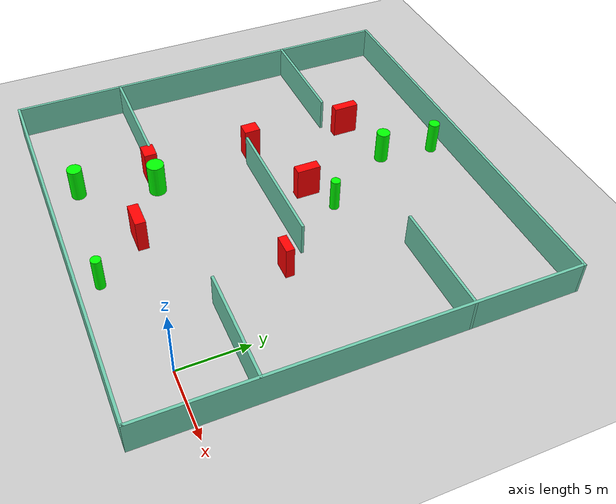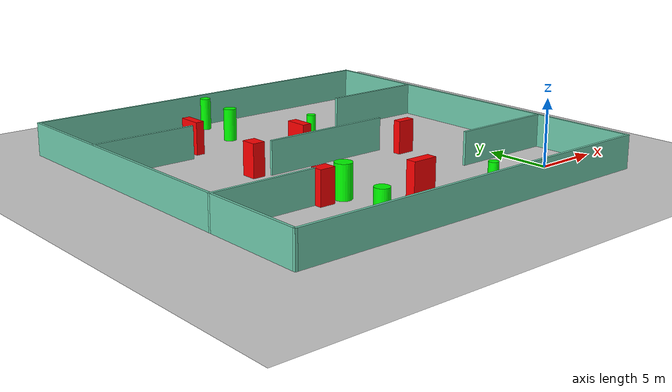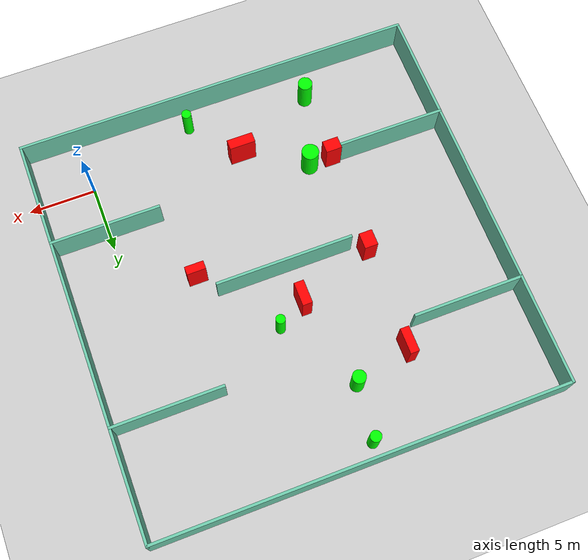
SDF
<sdf version="1.7">
 <world name="default">
  <light name="sun" type="directional">
   <pose>0 0 10 0 -0 0</pose>
   <diffuse>0.8 0.8 0.8 1</diffuse>
   <specular>0.2 0.2 0.2 1</specular>
   <attenuation>
    <range>1000</range>
    <constant>0.9</constant>
    <linear>0.01</linear>
    <quadratic>0.001</quadratic>
   </attenuation>
   <direction>-0.5 0.1 -0.9</direction>
   <spot><inner_angle>0</inner_angle><outer_angle>0</outer_angle><falloff>0</falloff></spot>
  </light>
  <model name="ground_plane">
   <static>1</static>
   <link name="link">
    <collision name="collision">
     <geometry><plane><normal>0 0 1</normal><size>100 100</size></plane></geometry>
     <surface>
      <contact><collide_bitmask>65535</collide_bitmask></contact>
      <friction><ode><mu>100</mu><mu2>50</mu2></ode></friction>
     </surface>
    </collision>
    <visual name="visual">
     <cast_shadows>0</cast_shadows>
     <geometry><plane><normal>0 0 1</normal><size>100 100</size></plane></geometry>
     <material>
      <script><uri>file://media/materials/scripts/gazebo.material</uri><name>Gazebo/Grey</name></script>
     </material>
    </visual>
   </link>
  </model>
  <gravity>0 0 -9.8</gravity>
  <magnetic_field>6e-06 2.3e-05 -4.2e-05</magnetic_field>
  <atmosphere type="adiabatic"/>
  <physics type="ode">
   <max_step_size>0.001</max_step_size>
   <real_time_factor>1</real_time_factor>
   <real_time_update_rate>1000</real_time_update_rate>
  </physics>
  <scene><ambient>0.4 0.4 0.4 1</ambient><background>0.7 0.7 0.7 1</background><shadows>1</shadows></scene>
  <spherical_coordinates>
   <surface_model>EARTH_WGS84</surface_model>
   <latitude_deg>0</latitude_deg>
   <longitude_deg>0</longitude_deg>
   <elevation>0</elevation>
   <heading_deg>0</heading_deg>
  </spherical_coordinates>
  <model name="my_base_walls">
   <link name="Wall_10">
    <collision name="Wall_10_Collision">
     <geometry><box><size>8.2 0.2 2.5</size></box></geometry>
     <pose>0 0 1.25 0 -0 0</pose>
    </collision>
    <visual name="Wall_10_Visual">
     <pose>0 0 1.25 0 -0 0</pose>
     <geometry><box><size>8.2 0.2 2.5</size></box></geometry>
     <material>
      <script><uri>file://media/materials/scripts/gazebo.material</uri><name>Gazebo/Grey</name></script>
      <ambient>0.435294 0.796078 0.67451 1</ambient>
     </material>
     <meta><layer>0</layer></meta>
    </visual>
    <pose>-11 -7 0 0 -0 0</pose>
   </link>
   <link name="Wall_12">
    <collision name="Wall_12_Collision">
     <geometry><box><size>8.2 0.2 2.5</size></box></geometry>
     <pose>0 0 1.25 0 -0 0</pose>
    </collision>
    <visual name="Wall_12_Visual">
     <pose>0 0 1.25 0 -0 0</pose>
     <geometry><box><size>8.2 0.2 2.5</size></box></geometry>
     <material>
      <script><uri>file://media/materials/scripts/gazebo.material</uri><name>Gazebo/Grey</name></script>
      <ambient>0.435294 0.796078 0.67451 1</ambient>
     </material>
     <meta><layer>0</layer></meta>
    </visual>
    <pose>-11 7 0 0 -0 0</pose>
   </link>
   <link name="Wall_14">
    <collision name="Wall_14_Collision">
     <geometry><box><size>8.2 0.2 2.5</size></box></geometry>
     <pose>0 0 1.25 0 -0 0</pose>
    </collision>
    <visual name="Wall_14_Visual">
     <pose>0 0 1.25 0 -0 0</pose>
     <geometry><box><size>8.2 0.2 2.5</size></box></geometry>
     <material>
      <script><uri>file://media/materials/scripts/gazebo.material</uri><name>Gazebo/Grey</name></script>
      <ambient>0.435294 0.796078 0.67451 1</ambient>
     </material>
     <meta><layer>0</layer></meta>
    </visual>
    <pose>11 7 0 0 -0 3.14159</pose>
   </link>
   <link name="Wall_16">
    <collision name="Wall_16_Collision">
     <geometry><box><size>10.2 0.2 2.5</size></box></geometry>
     <pose>0 0 1.25 0 -0 0</pose>
    </collision>
    <visual name="Wall_16_Visual">
     <pose>0 0 1.25 0 -0 0</pose>
     <geometry><box><size>10.2 0.2 2.5</size></box></geometry>
     <material>
      <script><uri>file://media/materials/scripts/gazebo.material</uri><name>Gazebo/Grey</name></script>
      <ambient>0.435294 0.796078 0.67451 1</ambient>
     </material>
     <meta><layer>0</layer></meta>
    </visual>
    <pose>0 0 0 0 -0 3.14159</pose>
   </link>
   <link name="Wall_2">
    <collision name="Wall_2_Collision">
     <geometry><box><size>30.2 0.2 2.5</size></box></geometry>
     <pose>0 0 1.25 0 -0 0</pose>
    </collision>
    <visual name="Wall_2_Visual">
     <pose>0 0 1.25 0 -0 0</pose>
     <geometry><box><size>30.2 0.2 2.5</size></box></geometry>
     <material>
      <script><uri>file://media/materials/scripts/gazebo.material</uri><name>Gazebo/Grey</name></script>
      <ambient>0.435294 0.796078 0.67451 1</ambient>
     </material>
     <meta><layer>0</layer></meta>
    </visual>
    <pose>0 -15 0 0 -0 3.14159</pose>
   </link>
   <link name="Wall_3">
    <collision name="Wall_3_Collision">
     <geometry><box><size>30.2 0.2 2.5</size></box></geometry>
     <pose>0 0 1.25 0 -0 0</pose>
    </collision>
    <visual name="Wall_3_Visual">
     <pose>0 0 1.25 0 -0 0</pose>
     <geometry><box><size>30.2 0.2 2.5</size></box></geometry>
     <material>
      <script><uri>file://media/materials/scripts/gazebo.material</uri><name>Gazebo/Grey</name></script>
      <ambient>0.435294 0.796078 0.67451 1</ambient>
     </material>
     <meta><layer>0</layer></meta>
    </visual>
    <pose>-15 0 0 0 -0 1.5708</pose>
   </link>
   <link name="Wall_4">
    <collision name="Wall_4_Collision">
     <geometry><box><size>30.2 0.2 2.5</size></box></geometry>
     <pose>0 0 1.25 0 -0 0</pose>
    </collision>
    <visual name="Wall_4_Visual">
     <pose>0 0 1.25 0 -0 0</pose>
     <geometry><box><size>30.2 0.2 2.5</size></box></geometry>
     <material>
      <script><uri>file://media/materials/scripts/gazebo.material</uri><name>Gazebo/Grey</name></script>
      <ambient>0.435294 0.796078 0.67451 1</ambient>
     </material>
     <meta><layer>0</layer></meta>
    </visual>
    <pose>0 15 0 0 -0 0</pose>
   </link>
   <link name="Wall_6">
    <collision name="Wall_6_Collision">
     <geometry><box><size>30.2 0.2 2.5</size></box></geometry>
     <pose>0 0 1.25 0 -0 0</pose>
    </collision>
    <visual name="Wall_6_Visual">
     <pose>0 0 1.25 0 -0 0</pose>
     <geometry><box><size>30.2 0.2 2.5</size></box></geometry>
     <material>
      <script><uri>file://media/materials/scripts/gazebo.material</uri><name>Gazebo/Grey</name></script>
      <ambient>0.435294 0.796078 0.67451 1</ambient>
     </material>
     <meta><layer>0</layer></meta>
    </visual>
    <pose>15 0 0 0 -0 1.5708</pose>
   </link>
   <link name="Wall_8">
    <collision name="Wall_8_Collision">
     <geometry><box><size>8.2 0.2 2.5</size></box></geometry>
     <pose>0 0 1.25 0 -0 0</pose>
    </collision>
    <visual name="Wall_8_Visual">
     <pose>0 0 1.25 0 -0 0</pose>
     <geometry><box><size>8.2 0.2 2.5</size></box></geometry>
     <material>
      <script><uri>file://media/materials/scripts/gazebo.material</uri><name>Gazebo/Grey</name></script>
      <ambient>0.435294 0.796078 0.67451 1</ambient>
     </material>
     <meta><layer>0</layer></meta>
    </visual>
    <pose>11 -7 0 0 -0 3.14159</pose>
   </link>
   <static>1</static>
   <pose>-11 11 0 0 -0 0</pose>
  </model>
  <model name="cylinder1">
   <static>1</static>
   <link name="link">
    <inertial>
     <mass>1</mass>
     <inertia><ixx>0.5</ixx><ixy>0</ixy><ixz>0</ixz><iyy>0.5</iyy><iyz>0</iyz><izz>1</izz></inertia>
    </inertial>
    <collision name="collision">
     <geometry><cylinder><radius>0.3580207479078124</radius><length>2.5</length></cylinder></geometry>
    </collision>
    <visual name="visual">
     <geometry><cylinder><radius>0.3580207479078124</radius><length>2.5</length></cylinder></geometry>
     <material>
      <ambient>0 1 0 1</ambient>
      <diffuse>0 1 0 1</diffuse>
      <specular>0.1 0.1 0.1 1</specular>
      <emissive>0 0 0 0</emissive>
     </material>
    </visual>
   </link>
   <pose>-8.25714377182827 -2.3685959363791125 1.25 0 0 0</pose>
  </model>
  <model name="cylinder2">
   <static>1</static>
   <link name="link">
    <inertial>
     <mass>1</mass>
     <inertia><ixx>0.5</ixx><ixy>0</ixy><ixz>0</ixz><iyy>0.5</iyy><iyz>0</iyz><izz>1</izz></inertia>
    </inertial>
    <collision name="collision">
     <geometry><cylinder><radius>0.40593501556926803</radius><length>2.5</length></cylinder></geometry>
    </collision>
    <visual name="visual">
     <geometry><cylinder><radius>0.40593501556926803</radius><length>2.5</length></cylinder></geometry>
     <material>
      <ambient>0 1 0 1</ambient>
      <diffuse>0 1 0 1</diffuse>
      <specular>0.1 0.1 0.1 1</specular>
      <emissive>0 0 0 0</emissive>
     </material>
    </visual>
   </link>
   <pose>-12.21133399953371 24.708694037958008 1.25 0 0 0</pose>
  </model>
  <model name="cylinder3">
   <static>1</static>
   <link name="link">
    <inertial>
     <mass>1</mass>
     <inertia><ixx>0.5</ixx><ixy>0</ixy><ixz>0</ixz><iyy>0.5</iyy><iyz>0</iyz><izz>1</izz></inertia>
    </inertial>
    <collision name="collision">
     <geometry><cylinder><radius>0.34646430885253715</radius><length>2.5</length></cylinder></geometry>
    </collision>
    <visual name="visual">
     <geometry><cylinder><radius>0.34646430885253715</radius><length>2.5</length></cylinder></geometry>
     <material>
      <ambient>0 1 0 1</ambient>
      <diffuse>0 1 0 1</diffuse>
      <specular>0.1 0.1 0.1 1</specular>
      <emissive>0 0 0 0</emissive>
     </material>
    </visual>
   </link>
   <pose>-9.194867191289998 14.979686042087351 1.25 0 0 0</pose>
  </model>
  <model name="cylinder4">
   <static>1</static>
   <link name="link">
    <inertial>
     <mass>1</mass>
     <inertia><ixx>0.5</ixx><ixy>0</ixy><ixz>0</ixz><iyy>0.5</iyy><iyz>0</iyz><izz>1</izz></inertia>
    </inertial>
    <collision name="collision">
     <geometry><cylinder><radius>0.5362290078061258</radius><length>2.5</length></cylinder></geometry>
    </collision>
    <visual name="visual">
     <geometry><cylinder><radius>0.5362290078061258</radius><length>2.5</length></cylinder></geometry>
     <material>
      <ambient>0 1 0 1</ambient>
      <diffuse>0 1 0 1</diffuse>
      <specular>0.1 0.1 0.1 1</specular>
      <emissive>0 0 0 0</emissive>
     </material>
    </visual>
   </link>
   <pose>-17.452833815777634 -1.6695238816808775 1.25 0 0 0</pose>
  </model>
  <model name="cylinder5">
   <static>1</static>
   <link name="link">
    <inertial>
     <mass>1</mass>
     <inertia><ixx>0.5</ixx><ixy>0</ixy><ixz>0</ixz><iyy>0.5</iyy><iyz>0</iyz><izz>1</izz></inertia>
    </inertial>
    <collision name="collision">
     <geometry><cylinder><radius>0.6332854094541032</radius><length>2.5</length></cylinder></geometry>
    </collision>
    <visual name="visual">
     <geometry><cylinder><radius>0.6332854094541032</radius><length>2.5</length></cylinder></geometry>
     <material>
      <ambient>0 1 0 1</ambient>
      <diffuse>0 1 0 1</diffuse>
      <specular>0.1 0.1 0.1 1</specular>
      <emissive>0 0 0 0</emissive>
     </material>
    </visual>
   </link>
   <pose>-15.741771291970144 3.7973710627741104 1.25 0 0 0</pose>
  </model>
  <model name="cylinder6">
   <static>1</static>
   <link name="link">
    <inertial>
     <mass>1</mass>
     <inertia><ixx>0.5</ixx><ixy>0</ixy><ixz>0</ixz><iyy>0.5</iyy><iyz>0</iyz><izz>1</izz></inertia>
    </inertial>
    <collision name="collision">
     <geometry><cylinder><radius>0.49541610279110115</radius><length>2.5</length></cylinder></geometry>
    </collision>
    <visual name="visual">
     <geometry><cylinder><radius>0.49541610279110115</radius><length>2.5</length></cylinder></geometry>
     <material>
      <ambient>0 1 0 1</ambient>
      <diffuse>0 1 0 1</diffuse>
      <specular>0.1 0.1 0.1 1</specular>
      <emissive>0 0 0 0</emissive>
     </material>
    </visual>
   </link>
   <pose>-12.710317257913054 20.625226819959085 1.25 0 0 0</pose>
  </model>
  <model name="box1">
   <static>1</static>
   <link name="link">
    <inertial>
     <mass>1</mass>
     <inertia><ixx>0.083</ixx><ixy>0</ixy><ixz>0</ixz><iyy>0.083</iyy><iyz>0</iyz><izz>0.083</izz></inertia>
    </inertial>
    <collision name="collision">
     <geometry><box><size>1.1894056645216313 0.9205468019770385 2.5</size></box></geometry>
    </collision>
    <visual name="visual">
     <geometry><box><size>1.1894056645216313 0.9205468019770385 2.5</size></box></geometry>
     <material>
      <ambient>1 0 0 1</ambient>
      <diffuse>1 0 0 1</diffuse>
      <specular>0.1 0.1 0.1 1</specular>
      <emissive>0 0 0 0</emissive>
     </material>
    </visual>
    <sensor name="my_contact" type="contact">
     <contact><collision>box_collision</collision><topic>__default_topic__</topic></contact>
    </sensor>
   </link>
   <pose>-17.449420649927895 3.8090857409745773 1.25 0 0 0</pose>
  </model>
  <model name="box2">
   <static>1</static>
   <link name="link">
    <inertial>
     <mass>1</mass>
     <inertia><ixx>0.083</ixx><ixy>0</ixy><ixz>0</ixz><iyy>0.083</iyy><iyz>0</iyz><izz>0.083</izz></inertia>
    </inertial>
    <collision name="collision">
     <geometry><box><size>1.9440292469302591 0.7654650302695539 2.5</size></box></geometry>
    </collision>
    <visual name="visual">
     <geometry><box><size>1.9440292469302591 0.7654650302695539 2.5</size></box></geometry>
     <material>
      <ambient>1 0 0 1</ambient>
      <diffuse>1 0 0 1</diffuse>
      <specular>0.1 0.1 0.1 1</specular>
      <emissive>0 0 0 0</emissive>
     </material>
    </visual>
    <sensor name="my_contact" type="contact">
     <contact><collision>box_collision</collision><topic>__default_topic__</topic></contact>
    </sensor>
   </link>
   <pose>-11.303742629097423 1.165548915678766 1.25 0 0 0</pose>
  </model>
  <model name="box3">
   <static>1</static>
   <link name="link">
    <inertial>
     <mass>1</mass>
     <inertia><ixx>0.083</ixx><ixy>0</ixy><ixz>0</ixz><iyy>0.083</iyy><iyz>0</iyz><izz>0.083</izz></inertia>
    </inertial>
    <collision name="collision">
     <geometry><box><size>0.9813919360215438 1.1881339651314915 2.5</size></box></geometry>
    </collision>
    <visual name="visual">
     <geometry><box><size>0.9813919360215438 1.1881339651314915 2.5</size></box></geometry>
     <material>
      <ambient>1 0 0 1</ambient>
      <diffuse>1 0 0 1</diffuse>
      <specular>0.1 0.1 0.1 1</specular>
      <emissive>0 0 0 0</emissive>
     </material>
    </visual>
    <sensor name="my_contact" type="contact">
     <contact><collision>box_collision</collision><topic>__default_topic__</topic></contact>
    </sensor>
   </link>
   <pose>-17.08881374868276 11.648545723018332 1.25 0 0 0</pose>
  </model>
  <model name="box4">
   <static>1</static>
   <link name="link">
    <inertial>
     <mass>1</mass>
     <inertia><ixx>0.083</ixx><ixy>0</ixy><ixz>0</ixz><iyy>0.083</iyy><iyz>0</iyz><izz>0.083</izz></inertia>
    </inertial>
    <collision name="collision">
     <geometry><box><size>1.4066700555097171 0.6170764831386756 2.5</size></box></geometry>
    </collision>
    <visual name="visual">
     <geometry><box><size>1.4066700555097171 0.6170764831386756 2.5</size></box></geometry>
     <material>
      <ambient>1 0 0 1</ambient>
      <diffuse>1 0 0 1</diffuse>
      <specular>0.1 0.1 0.1 1</specular>
      <emissive>0 0 0 0</emissive>
     </material>
    </visual>
    <sensor name="my_contact" type="contact">
     <contact><collision>box_collision</collision><topic>__default_topic__</topic></contact>
    </sensor>
   </link>
   <pose>-4.925909216365383 9.367156766836159 1.25 0 0 0</pose>
  </model>
  <model name="box5">
   <static>1</static>
   <link name="link">
    <inertial>
     <mass>1</mass>
     <inertia><ixx>0.083</ixx><ixy>0</ixy><ixz>0</ixz><iyy>0.083</iyy><iyz>0</iyz><izz>0.083</izz></inertia>
    </inertial>
    <collision name="collision">
     <geometry><box><size>0.7260710158092143 1.7553809354347623 2.5</size></box></geometry>
    </collision>
    <visual name="visual">
     <geometry><box><size>0.7260710158092143 1.7553809354347623 2.5</size></box></geometry>
     <material>
      <ambient>1 0 0 1</ambient>
      <diffuse>1 0 0 1</diffuse>
      <specular>0.1 0.1 0.1 1</specular>
      <emissive>0 0 0 0</emissive>
     </material>
    </visual>
    <sensor name="my_contact" type="contact">
     <contact><collision>box_collision</collision><topic>__default_topic__</topic></contact>
    </sensor>
   </link>
   <pose>-11.3330997312226 13.750412760014513 1.25 0 0 0</pose>
  </model>
  <model name="box6">
   <static>1</static>
   <link name="link">
    <inertial>
     <mass>1</mass>
     <inertia><ixx>0.083</ixx><ixy>0</ixy><ixz>0</ixz><iyy>0.083</iyy><iyz>0</iyz><izz>0.083</izz></inertia>
    </inertial>
    <collision name="collision">
     <geometry><box><size>0.6558639528251057 1.8738179286644878 2.5</size></box></geometry>
    </collision>
    <visual name="visual">
     <geometry><box><size>0.6558639528251057 1.8738179286644878 2.5</size></box></geometry>
     <material>
      <ambient>1 0 0 1</ambient>
      <diffuse>1 0 0 1</diffuse>
      <specular>0.1 0.1 0.1 1</specular>
      <emissive>0 0 0 0</emissive>
     </material>
    </visual>
    <sensor name="my_contact" type="contact">
     <contact><collision>box_collision</collision><topic>__default_topic__</topic></contact>
    </sensor>
   </link>
   <pose>-16.89572626802136 19.458427502969588 1.25 0 0 0</pose>
  </model>
 </world>
</sdf>
